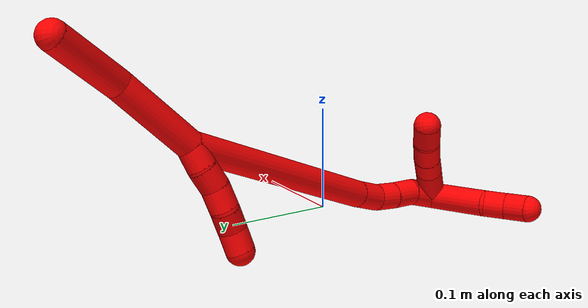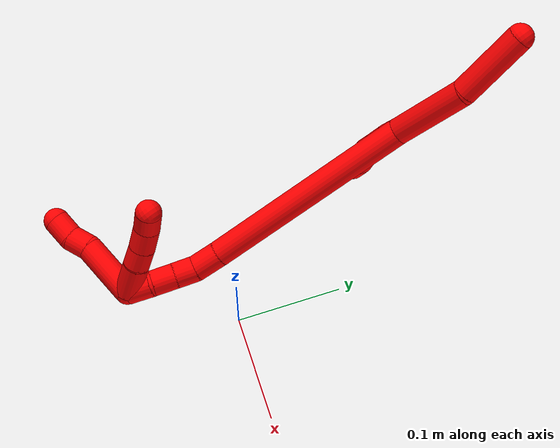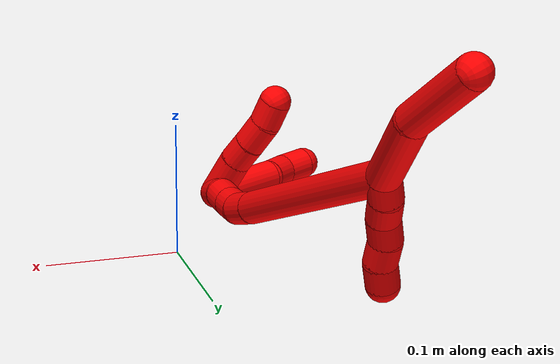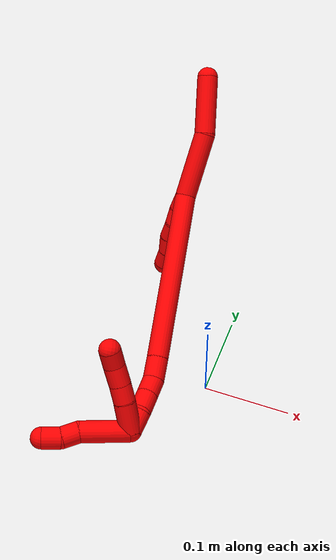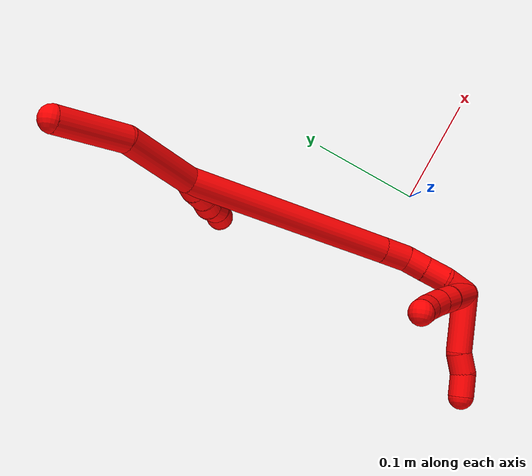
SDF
<sdf version="1.7">
 <world name="default">
  <model name="2">
   <static>0</static>
   <link name="2">
    <collision name="collision-cylinder-e_1_2_8">
     <pose>-0.015578 0.036124 0.003663 -1.46973 -0.405272 0.367167</pose>
     <geometry><cylinder><radius>0.0125</radius><length>0.07902</length></cylinder></geometry>
     <surface>
      <friction><ode><mu>1.16</mu><mu2>1.16</mu2><slip1>0</slip1><slip2>0</slip2></ode></friction>
      <contact><ode><kp>1e+06</kp><kd>1</kd><max_vel>0</max_vel><min_depth>0.001</min_depth></ode></contact>
     </surface>
    </collision>
    <visual name="visual-cylinder-e_1_2_8">
     <pose>-0.015578 0.036124 0.003663 -1.46973 -0.405272 0.367167</pose>
     <geometry><cylinder><radius>0.0125</radius><length>0.07902</length></cylinder></geometry>
     <material><ambient>1 0 0 1</ambient></material>
    </visual>
    <collision name="collision-cylinder-e_2_8_6">
     <pose>-0.038674 0.106646 0.002878 -1.69942 -0.213481 0.2426</pose>
     <geometry><cylinder><radius>0.0125</radius><length>0.07098</length></cylinder></geometry>
     <surface>
      <friction><ode><mu>1.16</mu><mu2>1.16</mu2><slip1>0</slip1><slip2>0</slip2></ode></friction>
      <contact><ode><kp>1e+06</kp><kd>1</kd><max_vel>0</max_vel><min_depth>0.001</min_depth></ode></contact>
     </surface>
    </collision>
    <visual name="visual-cylinder-e_2_8_6">
     <pose>-0.038674 0.106646 0.002878 -1.69942 -0.213481 0.2426</pose>
     <geometry><cylinder><radius>0.0125</radius><length>0.07098</length></cylinder></geometry>
     <material><ambient>1 0 0 1</ambient></material>
    </visual>
    <collision name="collision-cylinder-e_1_2_9">
     <pose>0.007691 -0.006319 -0.000958 1.7213 0.877457 0.999149</pose>
     <geometry><cylinder><radius>0.0125</radius><length>0.02</length></cylinder></geometry>
     <surface>
      <friction><ode><mu>1.16</mu><mu2>1.16</mu2><slip1>0</slip1><slip2>0</slip2></ode></friction>
      <contact><ode><kp>1e+06</kp><kd>1</kd><max_vel>0</max_vel><min_depth>0.001</min_depth></ode></contact>
     </surface>
    </collision>
    <visual name="visual-cylinder-e_1_2_9">
     <pose>0.007691 -0.006319 -0.000958 1.7213 0.877457 0.999149</pose>
     <geometry><cylinder><radius>0.0125</radius><length>0.02</length></cylinder></geometry>
     <material><ambient>1 0 0 1</ambient></material>
    </visual>
    <collision name="collision-cylinder-e_2_9_10">
     <pose>0.021672 -0.020404 -0.002263 1.61538 0.680218 0.708759</pose>
     <geometry><cylinder><radius>0.0125</radius><length>0.02</length></cylinder></geometry>
     <surface>
      <friction><ode><mu>1.16</mu><mu2>1.16</mu2><slip1>0</slip1><slip2>0</slip2></ode></friction>
      <contact><ode><kp>1e+06</kp><kd>1</kd><max_vel>0</max_vel><min_depth>0.001</min_depth></ode></contact>
     </surface>
    </collision>
    <visual name="visual-cylinder-e_2_9_10">
     <pose>0.021672 -0.020404 -0.002263 1.61538 0.680218 0.708759</pose>
     <geometry><cylinder><radius>0.0125</radius><length>0.02</length></cylinder></geometry>
     <material><ambient>1 0 0 1</ambient></material>
    </visual>
    <collision name="collision-cylinder-e_3_10_11">
     <pose>0.035959 -0.034154 -0.003098 1.65234 0.926936 0.993806</pose>
     <geometry><cylinder><radius>0.0125</radius><length>0.02</length></cylinder></geometry>
     <surface>
      <friction><ode><mu>1.16</mu><mu2>1.16</mu2><slip1>0</slip1><slip2>0</slip2></ode></friction>
      <contact><ode><kp>1e+06</kp><kd>1</kd><max_vel>0</max_vel><min_depth>0.001</min_depth></ode></contact>
     </surface>
    </collision>
    <visual name="visual-cylinder-e_3_10_11">
     <pose>0.035959 -0.034154 -0.003098 1.65234 0.926936 0.993806</pose>
     <geometry><cylinder><radius>0.0125</radius><length>0.02</length></cylinder></geometry>
     <material><ambient>1 0 0 1</ambient></material>
    </visual>
    <collision name="collision-cylinder-e_4_11_12">
     <pose>0.050779 -0.047242 -0.001861 1.33249 0.750756 0.600842</pose>
     <geometry><cylinder><radius>0.0125</radius><length>0.02</length></cylinder></geometry>
     <surface>
      <friction><ode><mu>1.16</mu><mu2>1.16</mu2><slip1>0</slip1><slip2>0</slip2></ode></friction>
      <contact><ode><kp>1e+06</kp><kd>1</kd><max_vel>0</max_vel><min_depth>0.001</min_depth></ode></contact>
     </surface>
    </collision>
    <visual name="visual-cylinder-e_4_11_12">
     <pose>0.050779 -0.047242 -0.001861 1.33249 0.750756 0.600842</pose>
     <geometry><cylinder><radius>0.0125</radius><length>0.02</length></cylinder></geometry>
     <material><ambient>1 0 0 1</ambient></material>
    </visual>
    <collision name="collision-cylinder-e_5_12_5">
     <pose>0.065837 -0.060013 -0.000396 1.61666 0.967676 1.00595</pose>
     <geometry><cylinder><radius>0.0125</radius><length>0.02</length></cylinder></geometry>
     <surface>
      <friction><ode><mu>1.16</mu><mu2>1.16</mu2><slip1>0</slip1><slip2>0</slip2></ode></friction>
      <contact><ode><kp>1e+06</kp><kd>1</kd><max_vel>0</max_vel><min_depth>0.001</min_depth></ode></contact>
     </surface>
    </collision>
    <visual name="visual-cylinder-e_5_12_5">
     <pose>0.065837 -0.060013 -0.000396 1.61666 0.967676 1.00595</pose>
     <geometry><cylinder><radius>0.0125</radius><length>0.02</length></cylinder></geometry>
     <material><ambient>1 0 0 1</ambient></material>
    </visual>
    <collision name="collision-cylinder-e_1_2_13">
     <pose>-0.000795 -0.102351 -0.003929 1.60917 -0.007759 -0.008063</pose>
     <geometry><cylinder><radius>0.0125</radius><length>0.204859</length></cylinder></geometry>
     <surface>
      <friction><ode><mu>1.16</mu><mu2>1.16</mu2><slip1>0</slip1><slip2>0</slip2></ode></friction>
      <contact><ode><kp>1e+06</kp><kd>1</kd><max_vel>0</max_vel><min_depth>0.001</min_depth></ode></contact>
     </surface>
    </collision>
    <visual name="visual-cylinder-e_1_2_13">
     <pose>-0.000795 -0.102351 -0.003929 1.60917 -0.007759 -0.008063</pose>
     <geometry><cylinder><radius>0.0125</radius><length>0.204859</length></cylinder></geometry>
     <material><ambient>1 0 0 1</ambient></material>
    </visual>
    <collision name="collision-cylinder-e_2_13_14">
     <pose>-0.00249 -0.217905 -0.008731 1.63671 -0.067981 -0.072612</pose>
     <geometry><cylinder><radius>0.0125</radius><length>0.026525</length></cylinder></geometry>
     <surface>
      <friction><ode><mu>1.16</mu><mu2>1.16</mu2><slip1>0</slip1><slip2>0</slip2></ode></friction>
      <contact><ode><kp>1e+06</kp><kd>1</kd><max_vel>0</max_vel><min_depth>0.001</min_depth></ode></contact>
     </surface>
    </collision>
    <visual name="visual-cylinder-e_2_13_14">
     <pose>-0.00249 -0.217905 -0.008731 1.63671 -0.067981 -0.072612</pose>
     <geometry><cylinder><radius>0.0125</radius><length>0.026525</length></cylinder></geometry>
     <material><ambient>1 0 0 1</ambient></material>
    </visual>
    <collision name="collision-cylinder-e_3_14_15">
     <pose>-0.006023 -0.240656 -0.012595 1.87461 -0.257179 -0.348524</pose>
     <geometry><cylinder><radius>0.0125</radius><length>0.020692</length></cylinder></geometry>
     <surface>
      <friction><ode><mu>1.16</mu><mu2>1.16</mu2><slip1>0</slip1><slip2>0</slip2></ode></friction>
      <contact><ode><kp>1e+06</kp><kd>1</kd><max_vel>0</max_vel><min_depth>0.001</min_depth></ode></contact>
     </surface>
    </collision>
    <visual name="visual-cylinder-e_3_14_15">
     <pose>-0.006023 -0.240656 -0.012595 1.87461 -0.257179 -0.348524</pose>
     <geometry><cylinder><radius>0.0125</radius><length>0.020692</length></cylinder></geometry>
     <material><ambient>1 0 0 1</ambient></material>
    </visual>
    <collision name="collision-cylinder-e_4_15_16">
     <pose>-0.012313 -0.260507 -0.018985 1.88919 -0.325243 -0.446115</pose>
     <geometry><cylinder><radius>0.0125</radius><length>0.022897</length></cylinder></geometry>
     <surface>
      <friction><ode><mu>1.16</mu><mu2>1.16</mu2><slip1>0</slip1><slip2>0</slip2></ode></friction>
      <contact><ode><kp>1e+06</kp><kd>1</kd><max_vel>0</max_vel><min_depth>0.001</min_depth></ode></contact>
     </surface>
    </collision>
    <visual name="visual-cylinder-e_4_15_16">
     <pose>-0.012313 -0.260507 -0.018985 1.88919 -0.325243 -0.446115</pose>
     <geometry><cylinder><radius>0.0125</radius><length>0.022897</length></cylinder></geometry>
     <material><ambient>1 0 0 1</ambient></material>
    </visual>
    <collision name="collision-cylinder-e_5_16_1">
     <pose>-0.016389 -0.282682 -0.026314 1.8907 -0.033416 -0.046268</pose>
     <geometry><cylinder><radius>0.0125</radius><length>0.025026</length></cylinder></geometry>
     <surface>
      <friction><ode><mu>1.16</mu><mu2>1.16</mu2><slip1>0</slip1><slip2>0</slip2></ode></friction>
      <contact><ode><kp>1e+06</kp><kd>1</kd><max_vel>0</max_vel><min_depth>0.001</min_depth></ode></contact>
     </surface>
    </collision>
    <visual name="visual-cylinder-e_5_16_1">
     <pose>-0.016389 -0.282682 -0.026314 1.8907 -0.033416 -0.046268</pose>
     <geometry><cylinder><radius>0.0125</radius><length>0.025026</length></cylinder></geometry>
     <material><ambient>1 0 0 1</ambient></material>
    </visual>
    <collision name="collision-cylinder-e_1_1_17">
     <pose>-0.025585 -0.280371 -0.037499 -2.04347 -0.503624 0.796121</pose>
     <geometry><cylinder><radius>0.0125</radius><length>0.036375</length></cylinder></geometry>
     <surface>
      <friction><ode><mu>1.16</mu><mu2>1.16</mu2><slip1>0</slip1><slip2>0</slip2></ode></friction>
      <contact><ode><kp>1e+06</kp><kd>1</kd><max_vel>0</max_vel><min_depth>0.001</min_depth></ode></contact>
     </surface>
    </collision>
    <visual name="visual-cylinder-e_1_1_17">
     <pose>-0.025585 -0.280371 -0.037499 -2.04347 -0.503624 0.796121</pose>
     <geometry><cylinder><radius>0.0125</radius><length>0.036375</length></cylinder></geometry>
     <material><ambient>1 0 0 1</ambient></material>
    </visual>
    <collision name="collision-cylinder-e_2_17_18">
     <pose>-0.038231 -0.257838 -0.049261 -2.06604 -0.387088 0.63502</pose>
     <geometry><cylinder><radius>0.0125</radius><length>0.020495</length></cylinder></geometry>
     <surface>
      <friction><ode><mu>1.16</mu><mu2>1.16</mu2><slip1>0</slip1><slip2>0</slip2></ode></friction>
      <contact><ode><kp>1e+06</kp><kd>1</kd><max_vel>0</max_vel><min_depth>0.001</min_depth></ode></contact>
     </surface>
    </collision>
    <visual name="visual-cylinder-e_2_17_18">
     <pose>-0.038231 -0.257838 -0.049261 -2.06604 -0.387088 0.63502</pose>
     <geometry><cylinder><radius>0.0125</radius><length>0.020495</length></cylinder></geometry>
     <material><ambient>1 0 0 1</ambient></material>
    </visual>
    <collision name="collision-cylinder-e_3_18_19">
     <pose>-0.046873 -0.240606 -0.059306 -2.12806 -0.427922 0.74618</pose>
     <geometry><cylinder><radius>0.0125</radius><length>0.023008</length></cylinder></geometry>
     <surface>
      <friction><ode><mu>1.16</mu><mu2>1.16</mu2><slip1>0</slip1><slip2>0</slip2></ode></friction>
      <contact><ode><kp>1e+06</kp><kd>1</kd><max_vel>0</max_vel><min_depth>0.001</min_depth></ode></contact>
     </surface>
    </collision>
    <visual name="visual-cylinder-e_3_18_19">
     <pose>-0.046873 -0.240606 -0.059306 -2.12806 -0.427922 0.74618</pose>
     <geometry><cylinder><radius>0.0125</radius><length>0.023008</length></cylinder></geometry>
     <material><ambient>1 0 0 1</ambient></material>
    </visual>
    <collision name="collision-cylinder-e_4_19_4">
     <pose>-0.057659 -0.225068 -0.0694 -2.1714 -0.640448 1.12318</pose>
     <geometry><cylinder><radius>0.0125</radius><length>0.020122</length></cylinder></geometry>
     <surface>
      <friction><ode><mu>1.16</mu><mu2>1.16</mu2><slip1>0</slip1><slip2>0</slip2></ode></friction>
      <contact><ode><kp>1e+06</kp><kd>1</kd><max_vel>0</max_vel><min_depth>0.001</min_depth></ode></contact>
     </surface>
    </collision>
    <visual name="visual-cylinder-e_4_19_4">
     <pose>-0.057659 -0.225068 -0.0694 -2.1714 -0.640448 1.12318</pose>
     <geometry><cylinder><radius>0.0125</radius><length>0.020122</length></cylinder></geometry>
     <material><ambient>1 0 0 1</ambient></material>
    </visual>
    <collision name="collision-cylinder-e_1_1_20">
     <pose>-0.011703 -0.298861 -0.058021 2.98773 0.17963 1.72573</pose>
     <geometry><cylinder><radius>0.0125</radius><length>0.057132</length></cylinder></geometry>
     <surface>
      <friction><ode><mu>1.16</mu><mu2>1.16</mu2><slip1>0</slip1><slip2>0</slip2></ode></friction>
      <contact><ode><kp>1e+06</kp><kd>1</kd><max_vel>0</max_vel><min_depth>0.001</min_depth></ode></contact>
     </surface>
    </collision>
    <visual name="visual-cylinder-e_1_1_20">
     <pose>-0.011703 -0.298861 -0.058021 2.98773 0.17963 1.72573</pose>
     <geometry><cylinder><radius>0.0125</radius><length>0.057132</length></cylinder></geometry>
     <material><ambient>1 0 0 1</ambient></material>
    </visual>
    <collision name="collision-cylinder-e_2_20_21">
     <pose>-0.005539 -0.307872 -0.094957 2.66729 0.10263 0.418764</pose>
     <geometry><cylinder><radius>0.0125</radius><length>0.020706</length></cylinder></geometry>
     <surface>
      <friction><ode><mu>1.16</mu><mu2>1.16</mu2><slip1>0</slip1><slip2>0</slip2></ode></friction>
      <contact><ode><kp>1e+06</kp><kd>1</kd><max_vel>0</max_vel><min_depth>0.001</min_depth></ode></contact>
     </surface>
    </collision>
    <visual name="visual-cylinder-e_2_20_21">
     <pose>-0.005539 -0.307872 -0.094957 2.66729 0.10263 0.418764</pose>
     <geometry><cylinder><radius>0.0125</radius><length>0.020706</length></cylinder></geometry>
     <material><ambient>1 0 0 1</ambient></material>
    </visual>
    <collision name="collision-cylinder-e_3_21_3">
     <pose>-0.002766 -0.314146 -0.114953 2.99758 0.155127 1.64535</pose>
     <geometry><cylinder><radius>0.0125</radius><length>0.022162</length></cylinder></geometry>
     <surface>
      <friction><ode><mu>1.16</mu><mu2>1.16</mu2><slip1>0</slip1><slip2>0</slip2></ode></friction>
      <contact><ode><kp>1e+06</kp><kd>1</kd><max_vel>0</max_vel><min_depth>0.001</min_depth></ode></contact>
     </surface>
    </collision>
    <visual name="visual-cylinder-e_3_21_3">
     <pose>-0.002766 -0.314146 -0.114953 2.99758 0.155127 1.64535</pose>
     <geometry><cylinder><radius>0.0125</radius><length>0.022162</length></cylinder></geometry>
     <material><ambient>1 0 0 1</ambient></material>
    </visual>
    <collision name="collision-sphere-3">
     <pose>-0.001054 -0.315718 -0.125788 0 -0 0</pose>
     <geometry><sphere><radius>0.0125</radius></sphere></geometry>
     <surface>
      <friction><ode><mu>1.16</mu><mu2>1.16</mu2><slip1>0</slip1><slip2>0</slip2></ode></friction>
      <contact><ode><kp>1e+06</kp><kd>1</kd><max_vel>0</max_vel><min_depth>0.001</min_depth></ode></contact>
     </surface>
    </collision>
    <visual name="visual-sphere-3">
     <pose>-0.001054 -0.315718 -0.125788 0 -0 0</pose>
     <geometry><sphere><radius>0.0125</radius></sphere></geometry>
     <material><ambient>1 0 0 1</ambient></material>
    </visual>
    <collision name="collision-sphere-21">
     <pose>-0.004478 -0.312575 -0.104119 0 -0 0</pose>
     <geometry><sphere><radius>0.0125</radius></sphere></geometry>
     <surface>
      <friction><ode><mu>1.16</mu><mu2>1.16</mu2><slip1>0</slip1><slip2>0</slip2></ode></friction>
      <contact><ode><kp>1e+06</kp><kd>1</kd><max_vel>0</max_vel><min_depth>0.001</min_depth></ode></contact>
     </surface>
    </collision>
    <visual name="visual-sphere-21">
     <pose>-0.004478 -0.312575 -0.104119 0 -0 0</pose>
     <geometry><sphere><radius>0.0125</radius></sphere></geometry>
     <material><ambient>1 0 0 1</ambient></material>
    </visual>
    <collision name="collision-sphere-20">
     <pose>-0.0066 -0.303168 -0.085795 0 -0 0</pose>
     <geometry><sphere><radius>0.0125</radius></sphere></geometry>
     <surface>
      <friction><ode><mu>1.16</mu><mu2>1.16</mu2><slip1>0</slip1><slip2>0</slip2></ode></friction>
      <contact><ode><kp>1e+06</kp><kd>1</kd><max_vel>0</max_vel><min_depth>0.001</min_depth></ode></contact>
     </surface>
    </collision>
    <visual name="visual-sphere-20">
     <pose>-0.0066 -0.303168 -0.085795 0 -0 0</pose>
     <geometry><sphere><radius>0.0125</radius></sphere></geometry>
     <material><ambient>1 0 0 1</ambient></material>
    </visual>
    <collision name="collision-sphere-4">
     <pose>-0.063671 -0.218412 -0.073959 0 -0 0</pose>
     <geometry><sphere><radius>0.0125</radius></sphere></geometry>
     <surface>
      <friction><ode><mu>1.16</mu><mu2>1.16</mu2><slip1>0</slip1><slip2>0</slip2></ode></friction>
      <contact><ode><kp>1e+06</kp><kd>1</kd><max_vel>0</max_vel><min_depth>0.001</min_depth></ode></contact>
     </surface>
    </collision>
    <visual name="visual-sphere-4">
     <pose>-0.063671 -0.218412 -0.073959 0 -0 0</pose>
     <geometry><sphere><radius>0.0125</radius></sphere></geometry>
     <material><ambient>1 0 0 1</ambient></material>
    </visual>
    <collision name="collision-sphere-11">
     <pose>0.043957 -0.040137 -0.003587 0 -0 0</pose>
     <geometry><sphere><radius>0.0125</radius></sphere></geometry>
     <surface>
      <friction><ode><mu>1.16</mu><mu2>1.16</mu2><slip1>0</slip1><slip2>0</slip2></ode></friction>
      <contact><ode><kp>1e+06</kp><kd>1</kd><max_vel>0</max_vel><min_depth>0.001</min_depth></ode></contact>
     </surface>
    </collision>
    <visual name="visual-sphere-11">
     <pose>0.043957 -0.040137 -0.003587 0 -0 0</pose>
     <geometry><sphere><radius>0.0125</radius></sphere></geometry>
     <material><ambient>1 0 0 1</ambient></material>
    </visual>
    <collision name="collision-sphere-10">
     <pose>0.027962 -0.028171 -0.00261 0 -0 0</pose>
     <geometry><sphere><radius>0.0125</radius></sphere></geometry>
     <surface>
      <friction><ode><mu>1.16</mu><mu2>1.16</mu2><slip1>0</slip1><slip2>0</slip2></ode></friction>
      <contact><ode><kp>1e+06</kp><kd>1</kd><max_vel>0</max_vel><min_depth>0.001</min_depth></ode></contact>
     </surface>
    </collision>
    <visual name="visual-sphere-10">
     <pose>0.027962 -0.028171 -0.00261 0 -0 0</pose>
     <geometry><sphere><radius>0.0125</radius></sphere></geometry>
     <material><ambient>1 0 0 1</ambient></material>
    </visual>
    <collision name="collision-sphere-6">
     <pose>-0.046193 0.141044 -0.001571 0 -0 0</pose>
     <geometry><sphere><radius>0.0125</radius></sphere></geometry>
     <surface>
      <friction><ode><mu>1.16</mu><mu2>1.16</mu2><slip1>0</slip1><slip2>0</slip2></ode></friction>
      <contact><ode><kp>1e+06</kp><kd>1</kd><max_vel>0</max_vel><min_depth>0.001</min_depth></ode></contact>
     </surface>
    </collision>
    <visual name="visual-sphere-6">
     <pose>-0.046193 0.141044 -0.001571 0 -0 0</pose>
     <geometry><sphere><radius>0.0125</radius></sphere></geometry>
     <material><ambient>1 0 0 1</ambient></material>
    </visual>
    <collision name="collision-sphere-9">
     <pose>0.015382 -0.012638 -0.001916 0 -0 0</pose>
     <geometry><sphere><radius>0.0125</radius></sphere></geometry>
     <surface>
      <friction><ode><mu>1.16</mu><mu2>1.16</mu2><slip1>0</slip1><slip2>0</slip2></ode></friction>
      <contact><ode><kp>1e+06</kp><kd>1</kd><max_vel>0</max_vel><min_depth>0.001</min_depth></ode></contact>
     </surface>
    </collision>
    <visual name="visual-sphere-9">
     <pose>0.015382 -0.012638 -0.001916 0 -0 0</pose>
     <geometry><sphere><radius>0.0125</radius></sphere></geometry>
     <material><ambient>1 0 0 1</ambient></material>
    </visual>
    <collision name="collision-sphere-2">
     <geometry><sphere><radius>0.0125</radius></sphere></geometry>
     <surface>
      <friction><ode><mu>1.16</mu><mu2>1.16</mu2><slip1>0</slip1><slip2>0</slip2></ode></friction>
      <contact><ode><kp>1e+06</kp><kd>1</kd><max_vel>0</max_vel><min_depth>0.001</min_depth></ode></contact>
     </surface>
    </collision>
    <visual name="visual-sphere-2">
     <geometry><sphere><radius>0.0125</radius></sphere></geometry>
     <material><ambient>1 0 0 1</ambient></material>
    </visual>
    <collision name="collision-sphere-19">
     <pose>-0.051647 -0.231723 -0.064841 0 -0 0</pose>
     <geometry><sphere><radius>0.0125</radius></sphere></geometry>
     <surface>
      <friction><ode><mu>1.16</mu><mu2>1.16</mu2><slip1>0</slip1><slip2>0</slip2></ode></friction>
      <contact><ode><kp>1e+06</kp><kd>1</kd><max_vel>0</max_vel><min_depth>0.001</min_depth></ode></contact>
     </surface>
    </collision>
    <visual name="visual-sphere-19">
     <pose>-0.051647 -0.231723 -0.064841 0 -0 0</pose>
     <geometry><sphere><radius>0.0125</radius></sphere></geometry>
     <material><ambient>1 0 0 1</ambient></material>
    </visual>
    <collision name="collision-sphere-8">
     <pose>-0.031155 0.072249 0.007327 0 -0 0</pose>
     <geometry><sphere><radius>0.0125</radius></sphere></geometry>
     <surface>
      <friction><ode><mu>1.16</mu><mu2>1.16</mu2><slip1>0</slip1><slip2>0</slip2></ode></friction>
      <contact><ode><kp>1e+06</kp><kd>1</kd><max_vel>0</max_vel><min_depth>0.001</min_depth></ode></contact>
     </surface>
    </collision>
    <visual name="visual-sphere-8">
     <pose>-0.031155 0.072249 0.007327 0 -0 0</pose>
     <geometry><sphere><radius>0.0125</radius></sphere></geometry>
     <material><ambient>1 0 0 1</ambient></material>
    </visual>
    <collision name="collision-sphere-12">
     <pose>0.057601 -0.054347 -0.000136 0 -0 0</pose>
     <geometry><sphere><radius>0.0125</radius></sphere></geometry>
     <surface>
      <friction><ode><mu>1.16</mu><mu2>1.16</mu2><slip1>0</slip1><slip2>0</slip2></ode></friction>
      <contact><ode><kp>1e+06</kp><kd>1</kd><max_vel>0</max_vel><min_depth>0.001</min_depth></ode></contact>
     </surface>
    </collision>
    <visual name="visual-sphere-12">
     <pose>0.057601 -0.054347 -0.000136 0 -0 0</pose>
     <geometry><sphere><radius>0.0125</radius></sphere></geometry>
     <material><ambient>1 0 0 1</ambient></material>
    </visual>
    <collision name="collision-sphere-5">
     <pose>0.074072 -0.065679 -0.000656 0 -0 0</pose>
     <geometry><sphere><radius>0.0125</radius></sphere></geometry>
     <surface>
      <friction><ode><mu>1.16</mu><mu2>1.16</mu2><slip1>0</slip1><slip2>0</slip2></ode></friction>
      <contact><ode><kp>1e+06</kp><kd>1</kd><max_vel>0</max_vel><min_depth>0.001</min_depth></ode></contact>
     </surface>
    </collision>
    <visual name="visual-sphere-5">
     <pose>0.074072 -0.065679 -0.000656 0 -0 0</pose>
     <geometry><sphere><radius>0.0125</radius></sphere></geometry>
     <material><ambient>1 0 0 1</ambient></material>
    </visual>
    <collision name="collision-sphere-13">
     <pose>-0.00159 -0.204702 -0.007859 0 -0 0</pose>
     <geometry><sphere><radius>0.0125</radius></sphere></geometry>
     <surface>
      <friction><ode><mu>1.16</mu><mu2>1.16</mu2><slip1>0</slip1><slip2>0</slip2></ode></friction>
      <contact><ode><kp>1e+06</kp><kd>1</kd><max_vel>0</max_vel><min_depth>0.001</min_depth></ode></contact>
     </surface>
    </collision>
    <visual name="visual-sphere-13">
     <pose>-0.00159 -0.204702 -0.007859 0 -0 0</pose>
     <geometry><sphere><radius>0.0125</radius></sphere></geometry>
     <material><ambient>1 0 0 1</ambient></material>
    </visual>
    <collision name="collision-sphere-14">
     <pose>-0.003391 -0.231108 -0.009602 0 -0 0</pose>
     <geometry><sphere><radius>0.0125</radius></sphere></geometry>
     <surface>
      <friction><ode><mu>1.16</mu><mu2>1.16</mu2><slip1>0</slip1><slip2>0</slip2></ode></friction>
      <contact><ode><kp>1e+06</kp><kd>1</kd><max_vel>0</max_vel><min_depth>0.001</min_depth></ode></contact>
     </surface>
    </collision>
    <visual name="visual-sphere-14">
     <pose>-0.003391 -0.231108 -0.009602 0 -0 0</pose>
     <geometry><sphere><radius>0.0125</radius></sphere></geometry>
     <material><ambient>1 0 0 1</ambient></material>
    </visual>
    <collision name="collision-sphere-15">
     <pose>-0.008655 -0.250204 -0.015589 0 -0 0</pose>
     <geometry><sphere><radius>0.0125</radius></sphere></geometry>
     <surface>
      <friction><ode><mu>1.16</mu><mu2>1.16</mu2><slip1>0</slip1><slip2>0</slip2></ode></friction>
      <contact><ode><kp>1e+06</kp><kd>1</kd><max_vel>0</max_vel><min_depth>0.001</min_depth></ode></contact>
     </surface>
    </collision>
    <visual name="visual-sphere-15">
     <pose>-0.008655 -0.250204 -0.015589 0 -0 0</pose>
     <geometry><sphere><radius>0.0125</radius></sphere></geometry>
     <material><ambient>1 0 0 1</ambient></material>
    </visual>
    <collision name="collision-sphere-16">
     <pose>-0.015971 -0.27081 -0.022381 0 -0 0</pose>
     <geometry><sphere><radius>0.0125</radius></sphere></geometry>
     <surface>
      <friction><ode><mu>1.16</mu><mu2>1.16</mu2><slip1>0</slip1><slip2>0</slip2></ode></friction>
      <contact><ode><kp>1e+06</kp><kd>1</kd><max_vel>0</max_vel><min_depth>0.001</min_depth></ode></contact>
     </surface>
    </collision>
    <visual name="visual-sphere-16">
     <pose>-0.015971 -0.27081 -0.022381 0 -0 0</pose>
     <geometry><sphere><radius>0.0125</radius></sphere></geometry>
     <material><ambient>1 0 0 1</ambient></material>
    </visual>
    <collision name="collision-sphere-1">
     <pose>-0.016807 -0.294553 -0.030246 0 -0 0</pose>
     <geometry><sphere><radius>0.0125</radius></sphere></geometry>
     <surface>
      <friction><ode><mu>1.16</mu><mu2>1.16</mu2><slip1>0</slip1><slip2>0</slip2></ode></friction>
      <contact><ode><kp>1e+06</kp><kd>1</kd><max_vel>0</max_vel><min_depth>0.001</min_depth></ode></contact>
     </surface>
    </collision>
    <visual name="visual-sphere-1">
     <pose>-0.016807 -0.294553 -0.030246 0 -0 0</pose>
     <geometry><sphere><radius>0.0125</radius></sphere></geometry>
     <material><ambient>1 0 0 1</ambient></material>
    </visual>
    <collision name="collision-sphere-18">
     <pose>-0.042099 -0.249489 -0.053771 0 -0 0</pose>
     <geometry><sphere><radius>0.0125</radius></sphere></geometry>
     <surface>
      <friction><ode><mu>1.16</mu><mu2>1.16</mu2><slip1>0</slip1><slip2>0</slip2></ode></friction>
      <contact><ode><kp>1e+06</kp><kd>1</kd><max_vel>0</max_vel><min_depth>0.001</min_depth></ode></contact>
     </surface>
    </collision>
    <visual name="visual-sphere-18">
     <pose>-0.042099 -0.249489 -0.053771 0 -0 0</pose>
     <geometry><sphere><radius>0.0125</radius></sphere></geometry>
     <material><ambient>1 0 0 1</ambient></material>
    </visual>
    <collision name="collision-sphere-17">
     <pose>-0.034362 -0.266188 -0.044751 0 -0 0</pose>
     <geometry><sphere><radius>0.0125</radius></sphere></geometry>
     <surface>
      <friction><ode><mu>1.16</mu><mu2>1.16</mu2><slip1>0</slip1><slip2>0</slip2></ode></friction>
      <contact><ode><kp>1e+06</kp><kd>1</kd><max_vel>0</max_vel><min_depth>0.001</min_depth></ode></contact>
     </surface>
    </collision>
    <visual name="visual-sphere-17">
     <pose>-0.034362 -0.266188 -0.044751 0 -0 0</pose>
     <geometry><sphere><radius>0.0125</radius></sphere></geometry>
     <material><ambient>1 0 0 1</ambient></material>
    </visual>
    <inertial>
     <pose>-0.00824 -0.124885 -0.020042 0 -0 0</pose>
     <mass>0.75</mass>
     <inertia>
      <ixx>0.000852</ixx>
      <ixy>0</ixy>
      <ixz>0</ixz>
      <iyy>1.6e-05</iyy>
      <iyz>0</iyz>
      <izz>0.000674</izz>
     </inertia>
    </inertial>
   </link>
   <pose>-0.093032 0.184816 0.111525 2.13593 1.05527 2.41826</pose>
  </model>
 </world>
</sdf>
